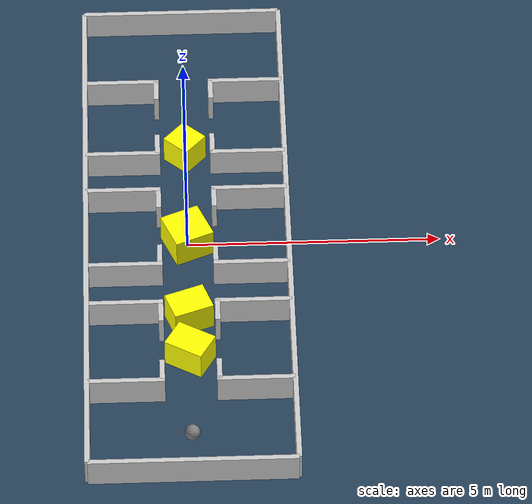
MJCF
<?xml version="1.0" ?>
<mujoco model="generated_environment">
  <option timestep="0.01" integrator="RK4" cone="elliptic"/>
  <default>
    <geom density="1"/>
  </default>
  <asset>
    <texture builtin="gradient" height="3072" rgb1="0.3 0.5 0.7" rgb2="0 0 0" type="skybox" width="512"/>
    <texture builtin="checker" height="300" mark="edge" markrgb="0.8 0.8 0.8" name="groundplane" rgb1="0.2 0.3 0.4" rgb2="0.1 0.2 0.3" type="2d" width="300"/>
    <material name="groundplane" reflectance="0.2" texrepeat="5 5" texture="groundplane" texuniform="true"/>
    <material name="robot" rgba="0.0 1.0 0.0 1"/>
  </asset>
  <worldbody>
    <light dir="0 0 -1" directional="true" pos="0 0 1.5"/>
    <geom condim="4" friction="1.0 0.005 0.001" material="groundplane" name="floor" size="0 0 0.05" type="plane"/>

    <body name="robot">
      <joint name="joint_x" type="slide" pos="0 0 0" axis="1 0 0"/>
      <joint name="joint_y" type="slide" pos="0 0 0" axis="0 1 0"/>
      <geom name="robot" type="sphere" pos="0 -5 0.2" size="0.15 0.15 0.15" mass="5.0" friction="1.0 0.005 0.0001" condim="4"/>
    </body>

    <body name="walls">
      <geom name="wall_1" condim="4" pos="-2 0 0.3" rgba="0.8 0.8 0.8 1" size="0.05 6 0.3" type="box"/>
      <geom name="wall_2" condim="4" pos="2 0 0.3" rgba="0.8 0.8 0.8 1" size="0.05 6 0.3" type="box"/>
      <geom name="wall_3" condim="4" pos="0 -6 0.3" rgba="0.8 0.8 0.8 1" size="2 0.05 0.3" type="box"/>
      <geom name="wall_4" condim="4" pos="0 6 0.3" rgba="0.8 0.8 0.8 1" size="2 0.05 0.3" type="box"/>

      <geom name="wall_5" condim="4" pos="-1.25 -4 0.3" rgba="0.8 0.8 0.8 1" size="0.75 0.05 0.3" type="box"/>
      <geom name="wall_6" condim="4" pos="1.25 -4 0.3" rgba="0.8 0.8 0.8 1" size="0.75 0.05 0.3" type="box"/>

      <geom name="wall_7" condim="4" pos="-1.25 -2.0 0.3" rgba="0.8 0.8 0.8 1" size="0.75 0.05 0.3" type="box"/>
      <geom name="wall_8" condim="4" pos="1.25 -2.0 0.3" rgba="0.8 0.8 0.8 1" size="0.75 0.05 0.3" type="box"/>

      <geom name="wall_9" condim="4" pos="0.55 -3.75 0.3" rgba="0.8 0.8 0.8 1" size="0.05 0.25 0.3" type="box"/>
      <geom name="wall_10" condim="4" pos="0.55 -2.25 0.3" rgba="0.8 0.8 0.8 1" size="0.05 0.25 0.3" type="box"/>

      <geom name="wall_11" condim="4" pos="-0.55 -3.75 0.3" rgba="0.8 0.8 0.8 1" size="0.05 0.25 0.3" type="box"/>
      <geom name="wall_12" condim="4" pos="-0.55 -2.25 0.3" rgba="0.8 0.8 0.8 1" size="0.05 0.25 0.3" type="box"/>

      <geom name="wall_13" condim="4" pos="-1.25 -1 0.3" rgba="0.8 0.8 0.8 1" size="0.75 0.05 0.3" type="box"/>
      <geom name="wall_14" condim="4" pos="1.25 -1 0.3" rgba="0.8 0.8 0.8 1" size="0.75 0.05 0.3" type="box"/>

      <geom name="wall_15" condim="4" pos="-1.25 1 0.3" rgba="0.8 0.8 0.8 1" size="0.75 0.05 0.3" type="box"/>
      <geom name="wall_16" condim="4" pos="1.25 1 0.3" rgba="0.8 0.8 0.8 1" size="0.75 0.05 0.3" type="box"/>

      <geom name="wall_17" condim="4" pos="0.55 -0.75 0.3" rgba="0.8 0.8 0.8 1" size="0.05 0.25 0.3" type="box"/>
      <geom name="wall_18" condim="4" pos="0.55 0.75 0.3" rgba="0.8 0.8 0.8 1" size="0.05 0.25 0.3" type="box"/>

      <geom name="wall_19" condim="4" pos="-0.55 -0.75 0.3" rgba="0.8 0.8 0.8 1" size="0.05 0.25 0.3" type="box"/>
      <geom name="wall_20" condim="4" pos="-0.55 0.75 0.3" rgba="0.8 0.8 0.8 1" size="0.05 0.25 0.3" type="box"/>

      <geom name="wall_21" condim="4" pos="-1.25 2.0 0.3" rgba="0.8 0.8 0.8 1" size="0.75 0.05 0.3" type="box"/>
      <geom name="wall_22" condim="4" pos="1.25 2.0 0.3" rgba="0.8 0.8 0.8 1" size="0.75 0.05 0.3" type="box"/>

      <geom name="wall_23" condim="4" pos="-1.25 4.0 0.3" rgba="0.8 0.8 0.8 1" size="0.75 0.05 0.3" type="box"/>
      <geom name="wall_24" condim="4" pos="1.25 4.0 0.3" rgba="0.8 0.8 0.8 1" size="0.75 0.05 0.3" type="box"/>

      <geom name="wall_25" condim="4" pos="0.55 2.25 0.3" rgba="0.8 0.8 0.8 1" size="0.05 0.25 0.3" type="box"/>
      <geom name="wall_26" condim="4" pos="0.55 3.75 0.3" rgba="0.8 0.8 0.8 1" size="0.05 0.25 0.3" type="box"/>

      <geom name="wall_27" condim="4" pos="-0.55 2.25 0.3" rgba="0.8 0.8 0.8 1" size="0.05 0.25 0.3" type="box"/>
      <geom name="wall_28" condim="4" pos="-0.55 3.75 0.3" rgba="0.8 0.8 0.8 1" size="0.05 0.25 0.3" type="box"/>

    </body>

    <body name="obstacle_1_movable">
      <geom name="obstacle_1_movable" condim="4" pos="0 0 0.3" euler="0 0 112.77846609561904" friction="0.0 0.005 0.001" rgba="1 1 0 1" size="0.4 0.4 0.3" type="box" mass="0.1"/>
      <joint type="free"/>
    </body>

    <body name="obstacle_2_movable">
      <geom name="obstacle_2_movable" condim="4" pos="0 -2 0.3" euler="0 0 20" friction="0.0 0.005 0.001" rgba="1 1 0 1" size="0.4 0.3 0.3" type="box" mass="0.1"/>
      <joint type="free"/>
    </body>

    <body name="obstacle_3_movable">
      <geom name="obstacle_3_movable" condim="4" pos="0 -3 0.3" euler="0 0 150" friction="0.0 0.005 0.001" rgba="1 1 0 1" size="0.4 0.3 0.3" type="box" mass="0.1"/>
      <joint type="free"/>
    </body>

    <body name="obstacle_4_movable">
      <geom name="obstacle_4_movable" condim="4" pos="0 2.4 0.3" euler="0 0 48" friction="0.0 0.005 0.001" rgba="1 1 0 1" size="0.3 0.3 0.3" type="box" mass="0.1"/>
      <joint type="free"/>
    </body>

    <site name="origin_x" pos="0.1 0 0.0" rgba="1 0 0 1" size="0.05" type="sphere"/>
    <site name="origin_y" pos="0 0.1 0" rgba="0 1 0 1" size="0.05" type="sphere"/>
    <site name="origin_z" pos="0 0 0.1" rgba="0 0 1 1" size="0.05" type="sphere"/>
  </worldbody>
</mujoco>
